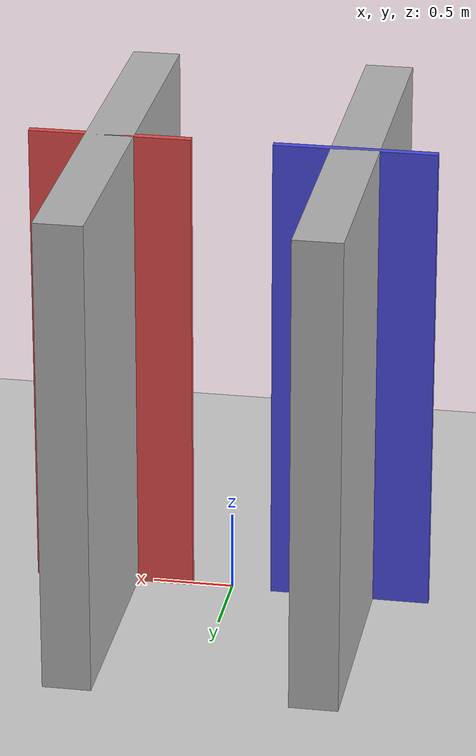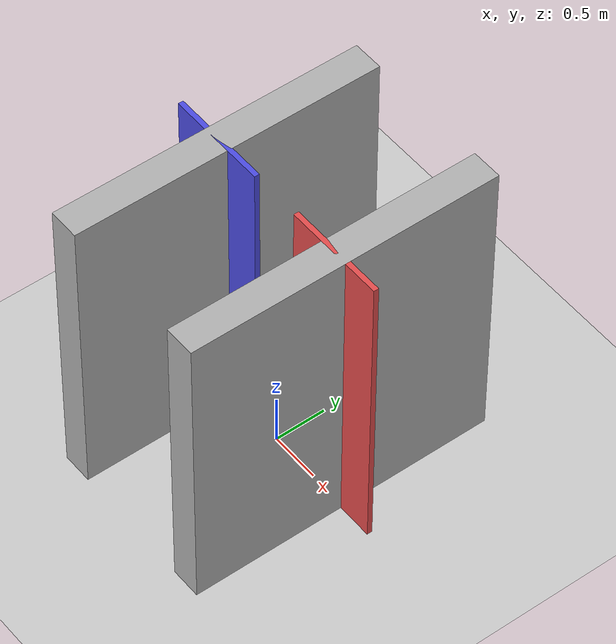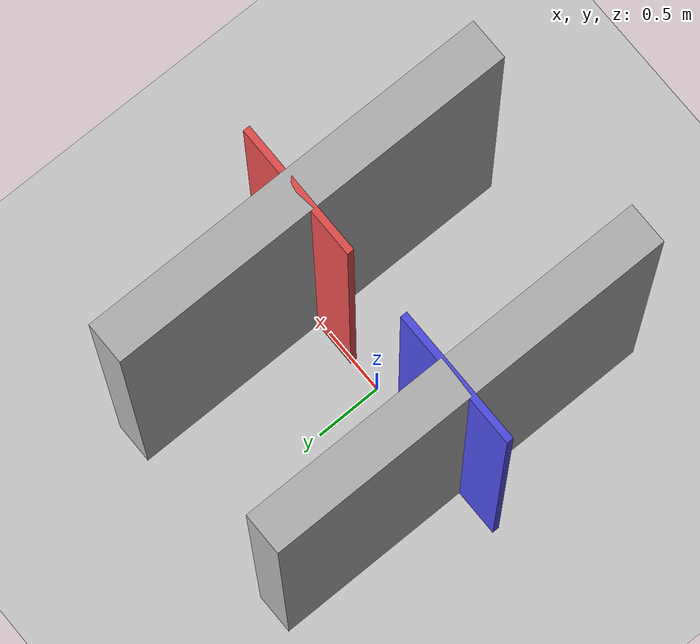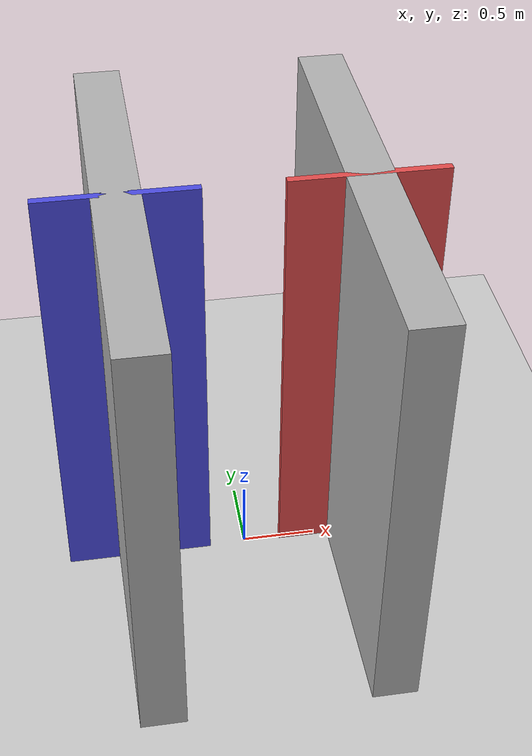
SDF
<?xml version="1.0" ?>
<sdf version="1.6">
  <world name="default">
    <!-- Ground plane -->
    <include>
      <uri>model://ground_plane</uri>
    </include>

    <!-- Muro sinistro -->
    <model name="left_wall">
      <static>true</static>
      <!-- Centro a x = -0.75 -->
      <pose>-0.75 0 1.5 0 0 0</pose>
      <link name="wall">
        <visual name="visual">
          <geometry>
            <box>
              <size>0.3 3 3</size>
            </box>
          </geometry>
          <material>
            <ambient>0.5 0.5 0.5 1</ambient>
            <diffuse>0.7 0.7 0.7 1</diffuse>
          </material>
        </visual>
        <collision name="collision">
          <geometry>
            <box>
              <size>0.3 3 3</size>
            </box>
          </geometry>
        </collision>
      </link>
    </model>

    <!-- Muro destro -->
    <model name="right_wall">
      <static>true</static>
      <!-- Centro a x = 0.75 -->
      <pose>0.75 0 1.5 0 0 0</pose>
      <link name="wall">
        <visual name="visual">
          <geometry>
            <box>
              <size>0.3 3 3</size>
            </box>
          </geometry>
          <material>
            <ambient>0.5 0.5 0.5 1</ambient>
            <diffuse>0.7 0.7 0.7 1</diffuse>
          </material>
        </visual>
        <collision name="collision">
          <geometry>
            <box>
              <size>0.3 3 3</size>
            </box>
          </geometry>
        </collision>
      </link>
    </model>

    <!-- Porta attaccata al muro sinistro -->
    <model name="door_left">
      <!-- Il frame della porta è fissato al muro sinistro -->
      <pose>-0.75 0 1.5 0 0 0</pose>
      <link name="door_frame">
        <pose>0 0 0 0 0 0</pose>
      </link>
      <link name="door">
        <!-- Imposta il link come kinematico per il controllo diretto -->
        <kinematic>true</kinematic>
        <pose>0 0 0 0 0 0</pose>
        <visual name="door_visual">
          <geometry>
            <box>
              <!-- Dimensioni della porta: larghezza 1 m, spessore 0.05 m, altezza 3 m -->
              <size>1 0.05 3</size>
            </box>
          </geometry>
          <material>
            <ambient>0.2 0.2 0.8 1</ambient>
            <diffuse>0.3 0.3 0.9 1</diffuse>
          </material>
        </visual>
        <collision name="door_collision">
          <geometry>
            <box>
              <size>1 0.05 3</size>
            </box>
          </geometry>
        </collision>
      </link>
      <!-- Giunto prismatic: la porta scorre lungo l'asse x verso sinistra per aprirsi -->
      <joint name="door_joint" type="prismatic">
        <parent>door_frame</parent>
        <child>door</child>
        <pose>0 0 0 0 0 0</pose>
        <axis>
          <!-- Poiché la porta è attaccata al muro sinistro, il movimento di apertura è verso sinistra -->
          <xyz>-1 0 0</xyz>
          <limit>
            <lower>0</lower>
            <upper>1.0</upper>
          </limit>
        </axis>
      </joint>
      <!-- Plugin per il controllo della porta -->
      <plugin name="door_control_plugin" filename="libdoor_control_plugin.so">
        <door_joint>door_joint</door_joint>
        <speed>1.0</speed>
        <open_target>1.0</open_target>
        <close_target>0.0</close_target>
      </plugin>
    </model>

    <!-- Porta attaccata al muro destro -->
    <model name="door_right">
      <pose>0.75 0 1.5 0 0 0</pose>
      <link name="door_frame">
        <pose>0 0 0 0 0 0</pose>
      </link>
      <link name="door">
        <kinematic>true</kinematic>
        <pose>0 0 0 0 0 0</pose>
        <visual name="door_visual">
          <geometry>
            <box>
              <size>1 0.05 3</size>
            </box>
          </geometry>
          <material>
            <ambient>0.8 0.2 0.2 1</ambient>
            <diffuse>0.9 0.3 0.3 1</diffuse>
          </material>
        </visual>
        <collision name="door_collision">
          <geometry>
            <box>
              <size>1 0.05 3</size>
            </box>
          </geometry>
        </collision>
      </link>
      <joint name="door_joint" type="prismatic">
        <parent>door_frame</parent>
        <child>door</child>
        <pose>0 0 0 0 0 0</pose>
        <axis>
          <!-- Per il muro destro, il movimento di apertura avviene lungo x positivo -->
          <xyz>1 0 0</xyz>
          <limit>
            <lower>0</lower>
            <upper>1.0</upper>
          </limit>
        </axis>
      </joint>
      <plugin name="door_control_plugin" filename="libdoor_control_plugin.so">
        <door_joint>door_joint</door_joint>
        <speed>1.0</speed>
        <open_target>1.0</open_target>
        <close_target>0.0</close_target>
      </plugin>
    </model>

  </world>
</sdf>
